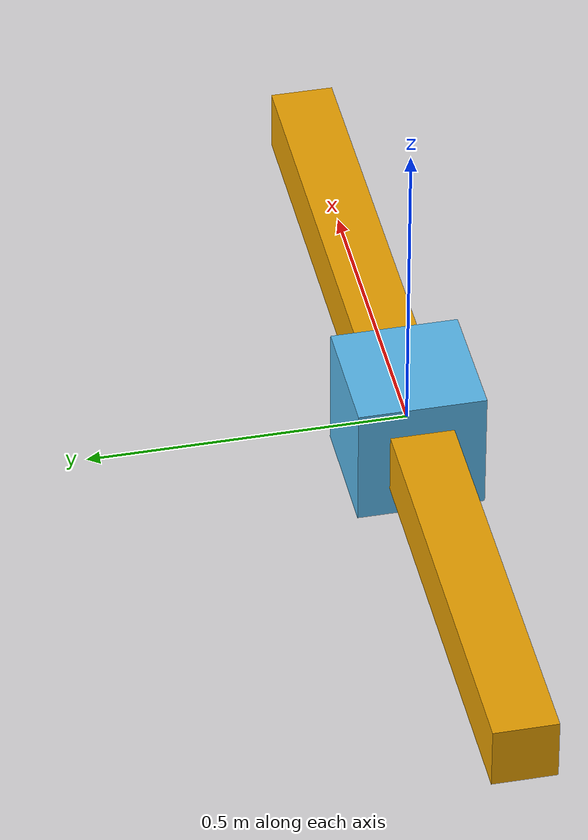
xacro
<?xml version="1.0"?>
<robot xmlns:xacro="http://www.ros.org/wiki/xacro" name="platform">
    <xacro:arg name="initial_positions_file" default="initial_positions.yaml" />

    <!-- Import platform urdf file -->
    <xacro:include filename="$(find ur_linear_guide)/urdf/linear_guide.urdf.xacro" />
</robot>

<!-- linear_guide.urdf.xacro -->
<robot xmlns:xacro="http://www.ros.org/wiki/xacro" name="platform">

  <xacro:arg name="fake" default="true"/>

   <!-- linear guide linked to world -->
  <xacro:include filename="$(find ur_linear_guide)/urdf/linear_guide.xacro"/>
  <xacro:linear_guide length="1.56" min_lim="0.05" max_lim="1.50" vel_lim="0.5" fake_hardware="$(arg fake)"/>

  <link name="world"/>
  <joint name="guide_base_joint" type="fixed">
    <origin xyz="0 0 0" rpy="0 0 0"/>
    <parent link="world"/>
    <child link="guide_base_link"/>
  </joint>

</robot>

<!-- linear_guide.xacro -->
<robot xmlns:xacro="http://www.ros.org/wiki/xacro">
<xacro:macro name="linear_guide" params="
  length:=1.56
  min_lim:=0.05
  max_lim:=1.50
  vel_lim:=0.5
  fake_hardware:=true
">

  <!-- Link -->
  <link name="guide_base_link">
    <visual>
      <geometry>
        <box size="${length} 0.1 0.1"/>
      </geometry>
    </visual>
    <collision>
      <geometry>
        <box size="${length} 0.1 0.1"/>
      </geometry>
    </collision>
    <inertial>
      <mass value="1"/>
      <inertia ixx="1" ixy="0" ixz="0" iyy="1" iyz="0" izz="1"/>
    </inertial>
  </link>

  <link name="guide_link">
    <visual>
      <geometry>
        <box size="0.2 0.2 0.2"/>
      </geometry>
    </visual>
    <collision>
      <geometry>
        <box size="0.2 0.2 0.2"/>
      </geometry>
    </collision>
    <inertial>
      <mass value="1"/>
      <inertia ixx="1" ixy="0" ixz="0" iyy="1" iyz="0" izz="1"/>
    </inertial>
  </link>

  <joint name = "guide_linear_joint" type="prismatic">
    <parent link = "guide_base_link"/>
    <child link = "guide_link"/>
    <origin xyz = "${-length/2} 0.0 0.0"/>
    <limit effort="1000.0" lower="${min_lim}" upper="${max_lim}" velocity="${vel_lim}"/>
    <axis xyz = "1 0 0"/>
    <dynamics damping="0.2" friction="0.1" />
  </joint>

  <!-- ros2_control configuration -->
  <ros2_control name="linear_guide_ros2_control" type="system">
    <hardware>
        <xacro:if value="${fake_hardware}">
            <plugin>mock_components/GenericSystem</plugin>
        </xacro:if>

        <xacro:unless value="${fake_hardware}">
            <plugin>ethercat_driver/EthercatDriver</plugin>
                <param name="master_id">0</param>
                <param name="control_frequency">1000</param>
        </xacro:unless>
    </hardware>

    <joint name="guide_linear_joint">
        <state_interface name="position"/>
        <state_interface name="velocity"/>
        <state_interface name="effort"/>
        <command_interface name="position"/>

        <xacro:unless value="${fake_hardware}">
            <ec_module name="ELMO">
                <plugin>ethercat_generic_plugins/EcCiA402Drive</plugin>
                <param name="alias">0</param>
                <param name="position">0</param>
                <param name="mode_of_operation">8</param>
                <param name="slave_config">$(find ur_linear_guide)/config/elmo.yaml</param>
            </ec_module>
        </xacro:unless>
    </joint>

</ros2_control>
  </xacro:macro>
</robot>
